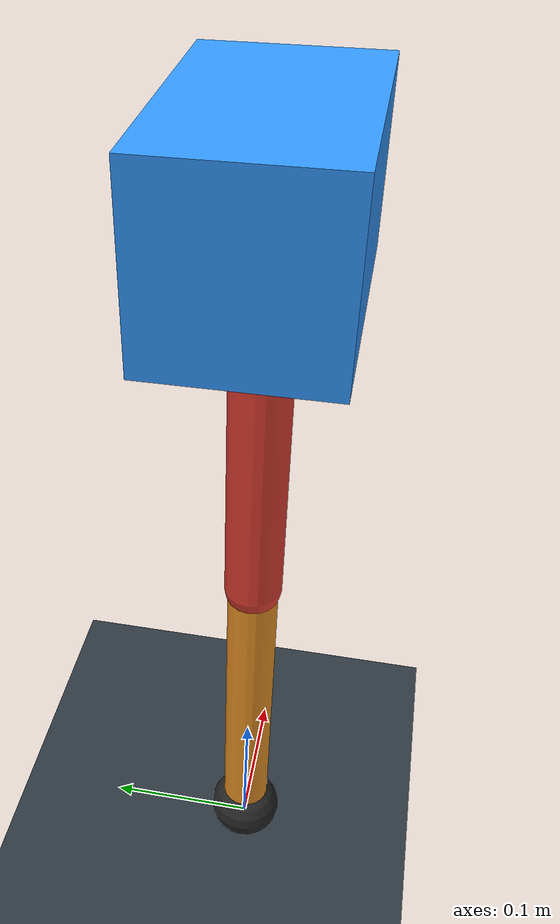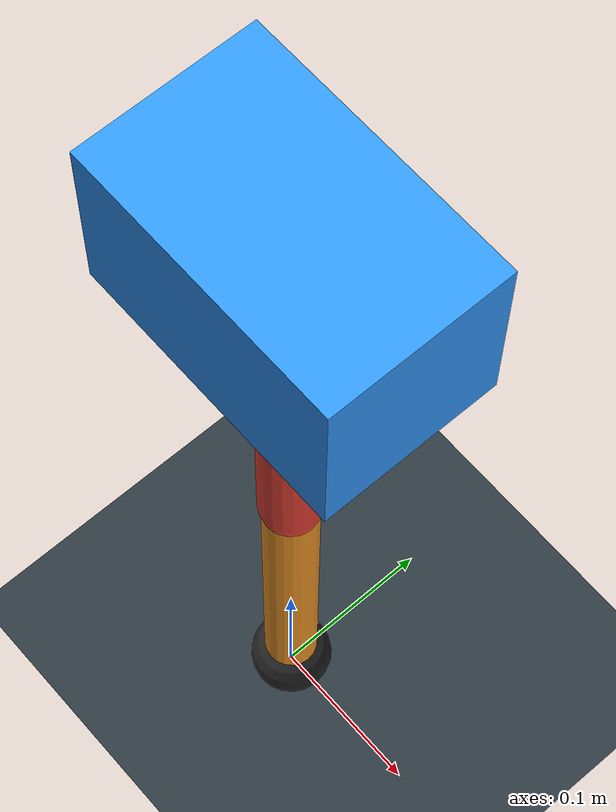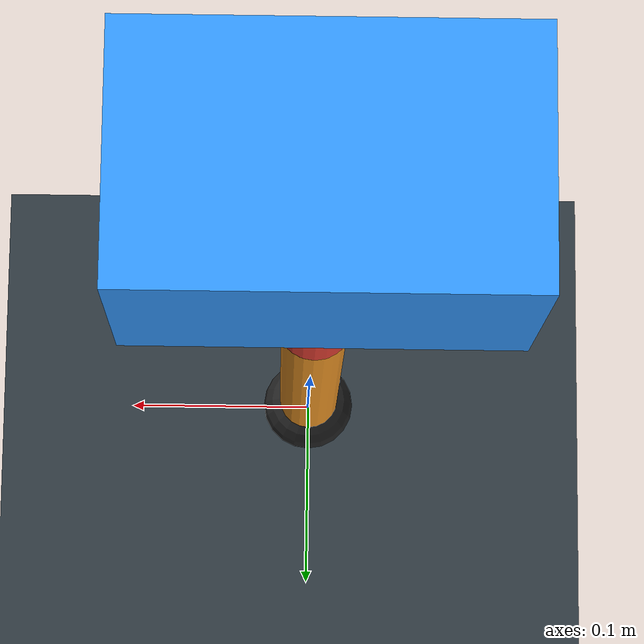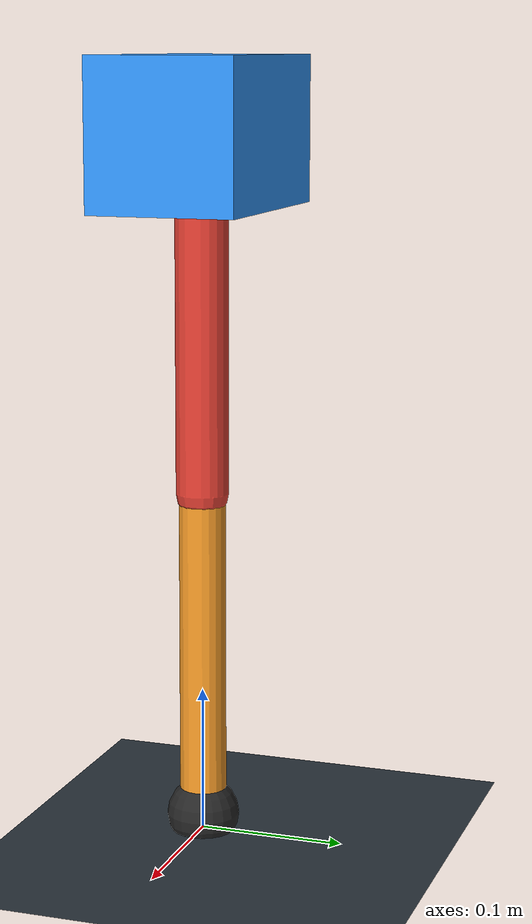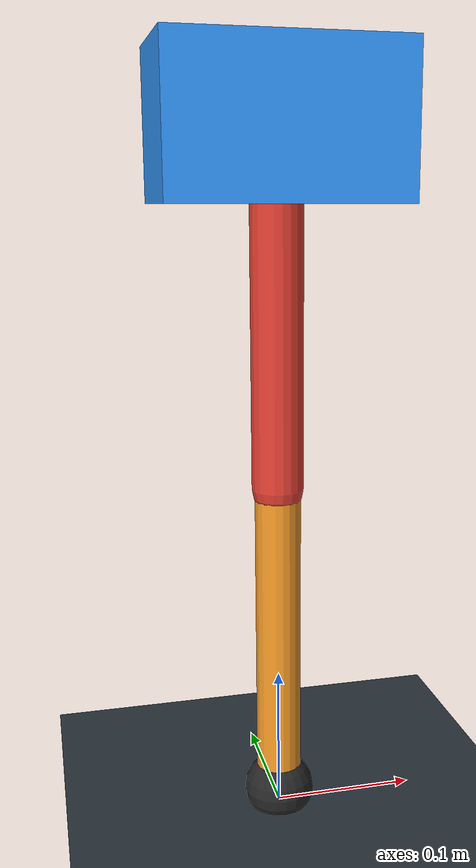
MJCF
<mujoco model="single_axis_two_bar">
  <compiler angle="radian" inertiafromgeom="true"/>
  <option timestep="0.001" integrator="implicitfast" gravity="0 0 -9.81"/>
  <default>
    <joint damping="0.08"/>
    <geom friction="1.2 0.01 0.0001" condim="3"/>
  </default>
  <worldbody>
    <geom name="floor" type="plane" size="5 5 0.1" rgba="0.18 0.22 0.25 1"/>
    <body name="carriage" pos="0 0 0.4820472093861361">
      <joint name="pole_slide" type="slide" axis="0 0 1"/>
      <geom name="payload" type="box" size="0.08 0.05 0.05" mass="3.6605061524894693" rgba="0.2 0.6 1 1"/>
      <body name="thigh" pos="0 0 0">
        <joint name="hip" type="hinge" axis="0 1 0"/>
        <geom name="thigh_link" type="capsule" fromto="0 0 0 0 0 -0.24272374560566312" size="0.018" mass="0.17294387605535733" rgba="0.9 0.25 0.2 1"/>
        <body name="shank" pos="0 0 -0.24272374560566312">
          <joint name="knee" type="hinge" axis="0 1 0"/>
          <geom name="shank_link" type="capsule" fromto="0 0 0 0 0 -0.22845894448313697" size="0.016" mass="0.162780016762841" rgba="0.95 0.6 0.15 1"/>
          <geom name="foot" type="sphere" pos="0 0 -0.22845894448313697" size="0.025" mass="0.03" rgba="0.15 0.15 0.15 1"/>
          <site name="toe" pos="0 0 -0.22845894448313697" size="0.008"/>
        </body>
      </body>
    </body>
  </worldbody>
  <actuator>
    <motor name="hip_motor" joint="hip" ctrlrange="-92.45135484737898 92.45135484737898"/>
    <motor name="knee_motor" joint="knee" ctrlrange="-28.077546656374988 28.077546656374988"/>
  </actuator>
</mujoco>
